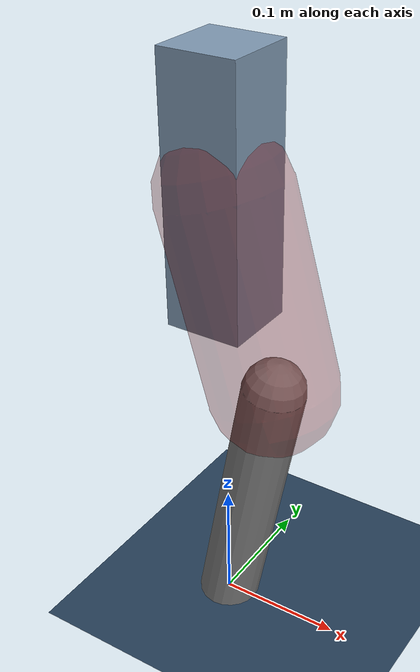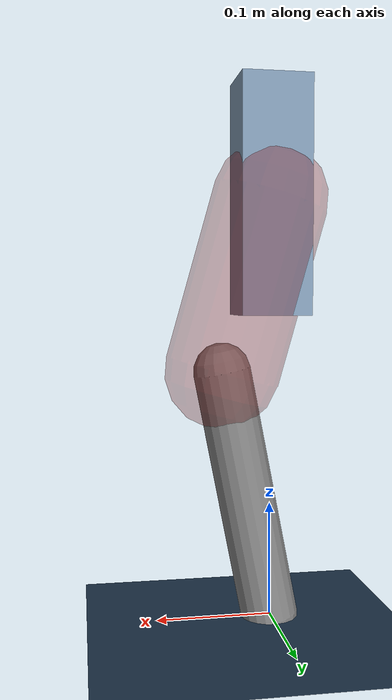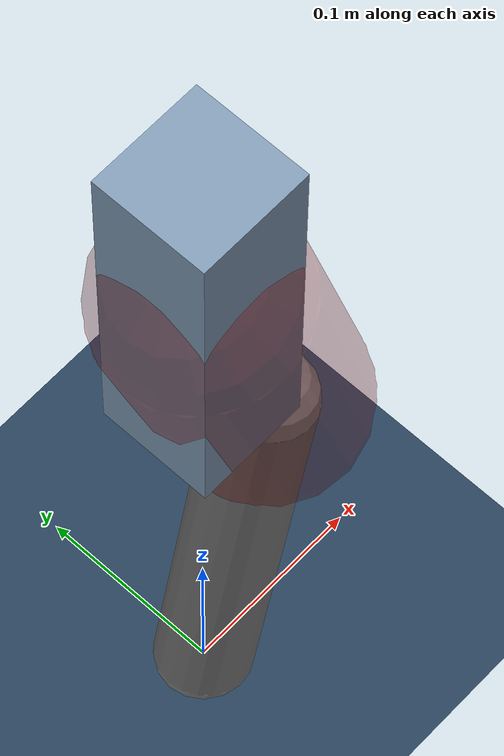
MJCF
<mujoco model="Hopper2D">
	<compiler inertiafromgeom="true" angle="radian" />
	<option timestep="0.001" integrator="implicit" cone="elliptic" solver="Newton" tolerance="1e-10" />

	<default>
		<geom contype="1" conaffinity="1" condim="3" friction="2 0.005 0.0001" solref="0.005 1" />
		<joint limited="true" damping="0.1" />
	</default>

	<asset>
		<texture name="skybox" type="skybox" builtin="gradient" rgb1=".4 .6 .8" rgb2="0 0 0" width="800" height="800" />
		<texture name="grid" type="2d" builtin="checker" rgb1=".1 .2 .3" rgb2=".2 .3 .4" width="300" height="300" mark="edge" markrgb=".2 .3 .4" />
		<material name="ground" texture="grid" texrepeat="1 1" texuniform="true" reflectance="0.1" />
		<material name="leg" rgba="0.5 0.6 0.7 1" />
	</asset>

	<worldbody>

		<geom name="floor" type="plane" size="5 5 0.25" material="ground" />

		<light directional="false" diffuse="0.8 0.8 0.8" specular="0.3 0.3 0.3" pos="0 0 2" dir="0 0 -1" />
		<light mode="targetbodycom" target="base" directional="false" diffuse="0.8 0.8 0.8" specular="0.3 0.3 0.3" pos="0 0 2" dir="0 0 -1" />

		<camera name="fixed" pos="0 -2 1" xyaxes="1 0 0 0 0 1" />
		<camera name="tracking" mode="trackcom" pos="0 -3 1" />

		<body name="root" pos="0 0 0.3656252476902213">
			<joint name="slide_x" type="slide" axis="1 0 0" range="-100 100" />
			<joint name="slide_z" type="slide" axis="0 0 1" range="0 10" />

			<body name="base" pos="0 0 0">
				<geom name="torso" type="box" size="0.03 0.03 0.1" mass="3.5330000000000004" material="leg" />

				<body name="link1" pos="0 0 0" euler="0 1.2929729815279853 0">
					<joint type="hinge" axis="0 -1 0" pos="0 0 0" name="hinge1" limited="true" range="-3.14 3.14" stiffness="0" damping="0.1" />
					<geom name="thigh" type="capsule" fromto="0 0 0 0.15429852258381677 0 0" size="0.05" rgba="0.5 0 0 0.3" mass="0.6187164542011602" />

					<body name="link2" pos="0.15429852258381677 0 0" euler="0 0.47021122842261714 0">
						<joint type="hinge" axis="0 -1 0" pos="0 0 0" name="hinge2" limited="true" range="-3.14 3.14" stiffness="0" damping="0.1" />
						<geom name="shank" type="capsule" fromto="0 0 0 0.22132672510640455 0 0" size="0.025" mass="0.41876138008512365" />

					</body>
				</body>
			</body>
		</body>
	</worldbody>

	<actuator>
		<motor name="torque1" joint="hinge1" ctrlrange="-228.0648658824667 228.0648658824667" ctrllimited="true" gear="1" />
		<motor name="torque2" joint="hinge2" ctrlrange="-37.97139127696438 37.97139127696438" ctrllimited="true" gear="1" />
	</actuator>
</mujoco>
